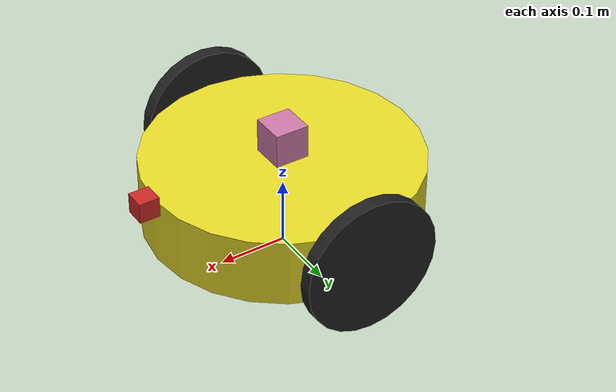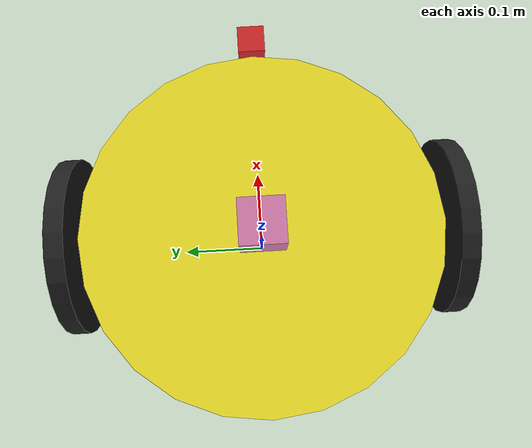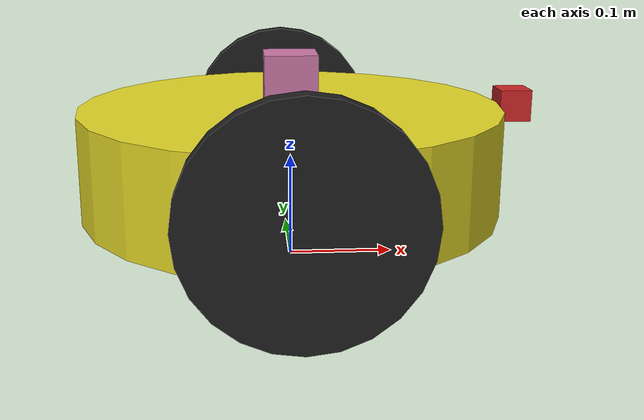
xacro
<?xml version="1.0"?>
<robot name = "my_ros_robot" xmlns:xacro = "http://www.ros.org/wiki/xacro">

     <xacro:property name="up_rate" value="100"/>
     <xacro:property name="PI" value="3.1415926535897931"/>
     <xacro:property name="WHEEL_RADIUS" value="0.1"/>
     <xacro:property name="U_MAX" value="10.0"/>
     <xacro:property name="V_MAX" value="20.0"/>
     <xacro:property name="WHEEL_JOINT_DAMP" value="0.3"/>
     <xacro:property name="WHEEL_SEPARATION" value="0.42"/>

     <xacro:macro name="wheel" params="name translation rotation parent">

         <link name="${name}_wheel">
            <visual>
                <origin rpy="${PI/2} 0 0" xyz="0 0 0"/>
                <geometry>
                     <cylinder radius = "${WHEEL_RADIUS}" length = "0.02"/>
                </geometry>
            </visual>
            <collision>
                <origin rpy="${PI/2} 0 0" xyz="0 0 0"/>
                <geometry>
                     <cylinder radius = "${WHEEL_RADIUS}" length = "0.02"/>
                </geometry>
            </collision>
            <inertial>
                <mass value="10"/>
                <inertia ixx="0.1" ixy="0.0" ixz="0.0" iyy="0.1" iyz="0.0" izz="0.1"/>
            </inertial>

        </link>

        <joint name="${name}_wheel_joint" type="continuous">
            <origin xyz="${translation}" rpy="${rotation}"/>
            <parent link="${parent}"/>
            <child link="${name}_wheel"/>
            <axis xyz="0 1 0"/>
            <limit effort="${U_MAX}" velocity="${V_MAX}"/>
            <dynamics damping="${WHEEL_JOINT_DAMP}"/>
        </joint>

        <gazebo reference="${name}_wheel">
             <mu1>1.0</mu1>
             <mu2>1.0</mu2>
        <material>Gazebo/Black</material>
        </gazebo>

    </xacro:macro>

    <link name="base_footprint"/>
    <joint name="base_footprint_to_base_link" type ="fixed">
        <parent link="base_footprint"/>
        <child link="base_link"/>
        <origin rpy="0 0 0" xyz="0 0 0.1"/>
    </joint>

    <link name="base_link">
        <visual>
            <origin rpy="0 0 0" xyz="0 0 0"/>
            <geometry>
            <cylinder radius = "0.2" length = "0.1"/>
            </geometry>
        </visual>
        <collision>
            <origin rpy="0 0 0" xyz="0 0 0"/>
            <geometry>
            <cylinder radius = "0.2" length = "0.1"/>
            </geometry>
        </collision>
        <inertial>
            <mass value="10"/>
            <inertia ixx="0.1" ixy="0.0" ixz="0.0" iyy="0.1" iyz="0.0" izz="0.1"/>
            </inertial>

    </link>

    <xacro:wheel
        name="left"
        translation="0 0.21 0"
        rotation="0 0 0"
        parent="base_link"/>

    <xacro:wheel
        name="right"
        translation="0 -0.21 0"
        rotation="0 0 0"
        parent="base_link"/>

    <joint name="base_caster" type="fixed">
        <parent link="base_link"/>
        <child link="caster"/>
        <origin rpy="0 0 0" xyz="0.09 0 -0.075"/>
    </joint>

    <link name="caster">
        <visual>
            <origin rpy="0 0 0" xyz="0 0 0"/>
            <geometry>
            <sphere radius = "0.025"/>
            </geometry>
        </visual>
        <collision>
            <origin rpy="0 0 0" xyz="0 0 0"/>
            <geometry>
            <sphere radius = "0.025"/>
            </geometry>
        </collision>
    </link>

     <gazebo reference="base_link">
        <mu1>0.3</mu1>
        <mu2>0.3</mu2>
        <material>Gazebo/Yellow</material>
    </gazebo>

    <gazebo reference="caster">
        <mu1>0</mu1>
        <mu2>0</mu2>
        <material>Gazebo/Black</material>
    </gazebo>

    <gazebo>
        <plugin name="differential_drive_controller" filename="libgazebo_ros_diff_drive.so">

    <!-- Plugin update rate in Hz -->
            <updateRate>${up_rate}</updateRate>

    <!-- Name of left joint, defaults to `left_joint` -->
            <leftJoint>left_wheel_joint</leftJoint>

    <!-- Name of right joint, defaults to `right_joint` -->
            <rightJoint>right_wheel_joint</rightJoint>

    <!-- The distance from the center of one wheel to the other, in meters, defaults to 0.34 m -->
            <wheelSeparation>0.42</wheelSeparation>

    <!-- Diameter of the wheels, in meters, defaults to 0.15 m -->
            <wheelDiameter>0.2</wheelDiameter>

    <!-- Wheel acceleration, in rad/s^2, defaults to 0.0 rad/s^2 -->
            <wheelAcceleration>1.0</wheelAcceleration>

    <!-- Maximum torque which the wheels can produce, in Nm, defaults to 5 Nm -->
            <wheelTorque>20</wheelTorque>

    <!-- Topic to receive geometry_msgs/Twist message commands, defaults to `cmd_vel` -->
            <commandTopic>cmd_vel</commandTopic>

    <!-- Topic to publish nav_msgs/Odometry messages, defaults to `odom` -->
            <odometryTopic>odom</odometryTopic>

    <!-- Odometry frame, defaults to `odom` -->
            <odometryFrame>odom</odometryFrame>

    <!-- Robot frame to calculate odometry from, defaults to `base_footprint` -->
            <robotBaseFrame>base_footprint</robotBaseFrame>

    <!-- Odometry source, 0 for ENCODER, 1 for WORLD, defaults to WORLD -->
            <odometrySource>1</odometrySource>

    <!-- Set to true to publish transforms for the wheel links, defaults to false -->
            <publishWheelTF>true</publishWheelTF>

    <!-- Set to true to publish transforms for the odometry, defaults to true -->
            <publishOdom>true</publishOdom>

    <!-- Set to true to publish sensor_msgs/JointState on /joint_states for the wheel joints, defaults to false -->
            <publishWheelJointState>true</publishWheelJointState>

    <!-- Set to true to swap right and left wheels, defaults to true -->
            <legacyMode>false</legacyMode>
        </plugin>
    </gazebo>

    <joint name="camera_joint" type="fixed">
            <axis xyz="0 1 0" />
            <origin xyz="0.215 0 0.0485" rpy="0 0 0"/>
            <parent link="base_link"/>
            <child link="camera_link"/>
    </joint>

  <!-- Camera -->
    <link name="camera_link">
        <collision>
            <origin xyz="0 0 0" rpy="0 0 0"/>
            <geometry>
            <box size="0.03 0.03 0.03"/>
            </geometry>
        </collision>

        <visual>
            <origin xyz="0 0 0" rpy="0 0 0"/>
            <geometry>
            <box size="0.03 0.03 0.03"/>
            </geometry>
            <material name="red"/>
        </visual>

        <inertial>
            <mass value="1e-5" />
            <origin xyz="0 0 0" rpy="0 0 0"/>
            <inertia ixx="1e-6" ixy="0" ixz="0" iyy="1e-6" iyz="0" izz="1e-6" />
        </inertial>
    </link>

    <gazebo reference="camera_link">
    <sensor type="camera" name="camera1">
    <update_rate>30.0</update_rate>
    <camera name="head">
    <horizontal_fov>1.3962634</horizontal_fov>
        <image>
            <width>800</width>
            <height>800</height>
            <format>R8G8B8</format>
        </image>
        <clip>
            <near>0.02</near>
            <far>300</far>
        </clip>
        <noise>
        <type>gaussian</type>
          <!-- Noise is sampled independently per pixel on each frame.
               That pixel's noise value is added to each of its color
               channels, which at that point lie in the range [0,1]. -->
            <mean>0.0</mean>
            <stddev>0.007</stddev>
        </noise>
        </camera>
        <plugin name="camera_controller" filename="libgazebo_ros_camera.so">
        <alwaysOn>true</alwaysOn>
        <updateRate>0.0</updateRate>
        <cameraName>rrbot/camera1</cameraName>
        <imageTopicName>image_raw</imageTopicName>
        <cameraInfoTopicName>camera_info</cameraInfoTopicName>
        <frameName>camera_link</frameName>
            <hackBaseline>0.07</hackBaseline>
            <distortionK1>0.0</distortionK1>
            <distortionK2>0.0</distortionK2>
            <distortionK3>0.0</distortionK3>
            <distortionT1>0.0</distortionT1>
            <distortionT2>0.0</distortionT2>
        </plugin>
      </sensor>
    </gazebo>

    <joint name="hokuyo_joint" type="fixed">
        <axis xyz="0 1 0" />
        <origin xyz="0 0 0.075" rpy="0 0 0"/>
        <parent link="base_link"/>
        <child link="hokuyo_link"/>
        </joint>

  <!-- Hokuyo Laser -->
    <link name="hokuyo_link">
    <collision>
        <origin xyz="0 0 0" rpy="0 0 0"/>
        <geometry>
        <box size="0.05 0.05 0.05"/>
        </geometry>
    </collision>

    <visual>
        <origin xyz="0 0 0" rpy="0 0 0"/>
        <geometry>
        <box size="0.05 0.05 0.05"/>
        </geometry>
    </visual>

    <inertial>
        <mass value="1e-5" />
        <origin xyz="0 0 0" rpy="0 0 0"/>
        <inertia ixx="1e-6" ixy="0" ixz="0" iyy="1e-6" iyz="0" izz="1e-6" />
    </inertial>
    </link>

   <!-- hokuyo -->
    <gazebo reference="hokuyo_link">
    <sensor type="gpu_ray" name="head_hokuyo_sensor">
      <pose>0 0 0 0 0 0</pose>
      <visualize>false</visualize>
      <update_rate>40</update_rate>
      <ray>
      <scan>
      <horizontal>
            <samples>720</samples>
            <resolution>1</resolution>
            <min_angle>-1.570796</min_angle>
            <max_angle>1.570796</max_angle>
      </horizontal>
      </scan>
      <range>
            <min>0.10</min>
            <max>30.0</max>
      <resolution>0.01</resolution>
      </range>
      <noise>
        <type>gaussian</type>
          <mean>0.0</mean>
          <stddev>0.01</stddev>
        </noise>
        </ray>
        <plugin name="gazebo_ros_head_hokuyo_controller" filename="libgazebo_ros_gpu_laser.so">
        <topicName>/rrbot/laser/scan</topicName>
        <frameName>hokuyo_link</frameName>
      </plugin>
    </sensor>
  </gazebo>

</robot>
